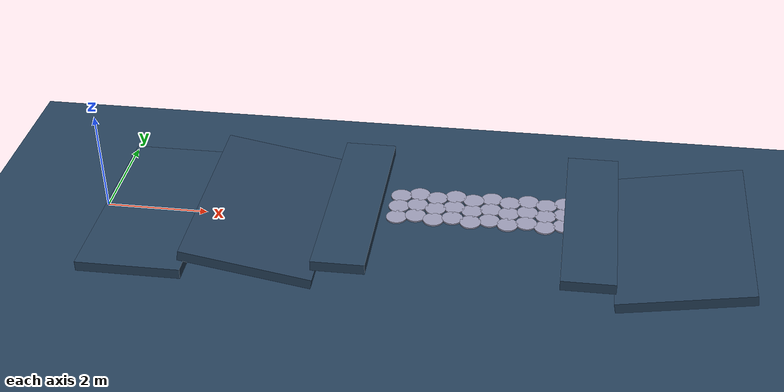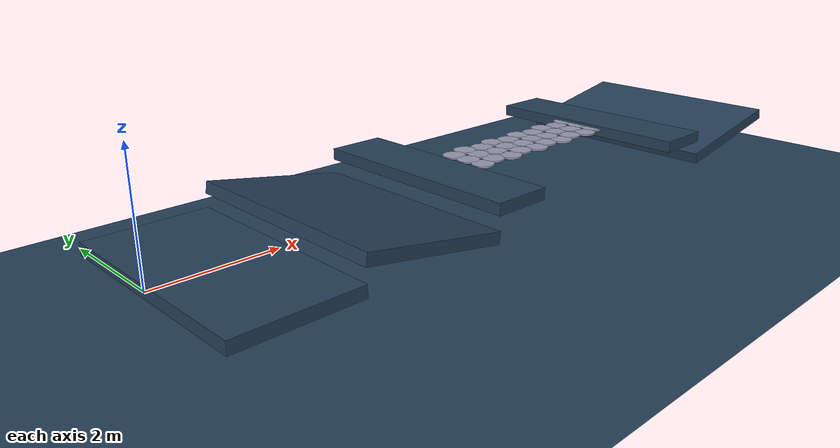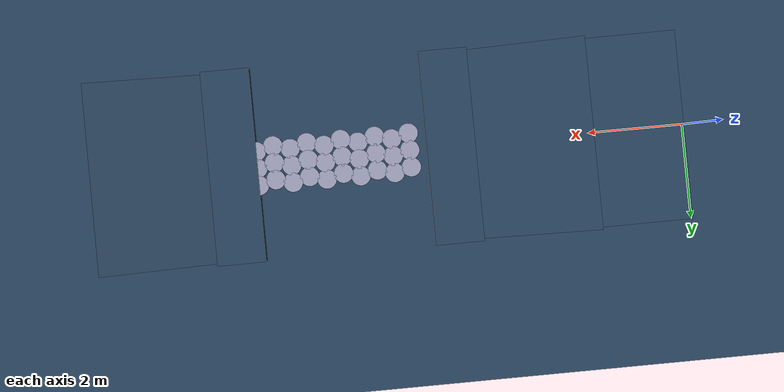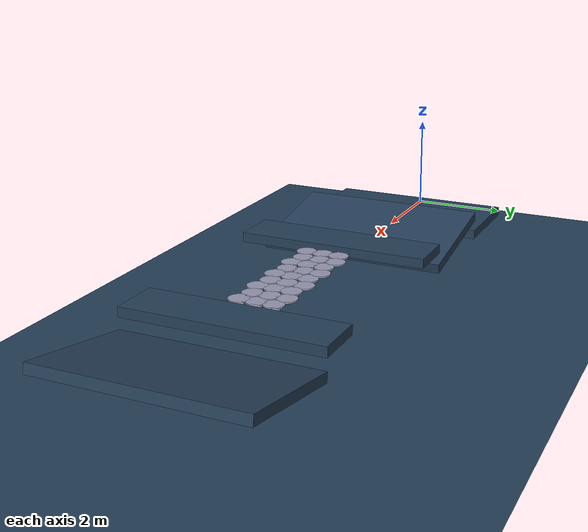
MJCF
<mujoco model="stepping_stones_terrain">
  <asset>
    <texture name="grid" type="2d" builtin="checker" width="512" height="512" rgb1=".1 .2 .3" rgb2=".2 .3 .4"/>
    <material name="grid" texture="grid" texrepeat="1 1" texuniform="true" reflectance=".2"/>
    <material name="stone" rgba=".6 .6 .7 1"/>
  </asset>

  <worldbody>
    <light pos="0 0 3" dir="0 0 -1" directional="true"/>

    <!-- Flat starting area (robot spawn point) -->
    <geom name="flat_start" type="box" pos="1.0 0 0.0" size="1.0 2.0 0.1" material="grid" friction="1.0 0.005 0.0001"/>

    <!-- Uphill slope -->
    <geom name="uphill" type="box" pos="3.23100969126526 0 0.2170602220836629" size="1.25 2.0 0.1" euler="0 10.0 0" material="grid" friction="1.0 0.005 0.0001"/>

    <!-- First flat section -->
    <geom name="flat1" type="box" pos="4.96201938253052 0 0.44081745177116244" size="0.5 2.0 0.1" material="grid" friction="1.0 0.005 0.0001"/>

    <!-- Stepping stones section -->
    <geom name="stone_0" type="cylinder" pos="5.8120193825305195 -0.35 0.4708174517711624" size="0.2 0.015" material="stone" friction="1.0 0.005 0.0001"/>
    <geom name="stone_1" type="cylinder" pos="5.8120193825305195 0.0 0.4708174517711624" size="0.2 0.015" material="stone" friction="1.0 0.005 0.0001"/>
    <geom name="stone_2" type="cylinder" pos="5.8120193825305195 0.35 0.4708174517711624" size="0.2 0.015" material="stone" friction="1.0 0.005 0.0001"/>
    <geom name="stone_3" type="cylinder" pos="6.162019382530519 -0.26249999999999996 0.4708174517711624" size="0.2 0.015" material="stone" friction="1.0 0.005 0.0001"/>
    <geom name="stone_4" type="cylinder" pos="6.162019382530519 0.0875 0.4708174517711624" size="0.2 0.015" material="stone" friction="1.0 0.005 0.0001"/>
    <geom name="stone_5" type="cylinder" pos="6.162019382530519 0.4375 0.4708174517711624" size="0.2 0.015" material="stone" friction="1.0 0.005 0.0001"/>
    <geom name="stone_6" type="cylinder" pos="6.512019382530519 -0.35 0.4708174517711624" size="0.2 0.015" material="stone" friction="1.0 0.005 0.0001"/>
    <geom name="stone_7" type="cylinder" pos="6.512019382530519 0.0 0.4708174517711624" size="0.2 0.015" material="stone" friction="1.0 0.005 0.0001"/>
    <geom name="stone_8" type="cylinder" pos="6.512019382530519 0.35 0.4708174517711624" size="0.2 0.015" material="stone" friction="1.0 0.005 0.0001"/>
    <geom name="stone_9" type="cylinder" pos="6.8620193825305185 -0.26249999999999996 0.4708174517711624" size="0.2 0.015" material="stone" friction="1.0 0.005 0.0001"/>
    <geom name="stone_10" type="cylinder" pos="6.8620193825305185 0.0875 0.4708174517711624" size="0.2 0.015" material="stone" friction="1.0 0.005 0.0001"/>
    <geom name="stone_11" type="cylinder" pos="6.8620193825305185 0.4375 0.4708174517711624" size="0.2 0.015" material="stone" friction="1.0 0.005 0.0001"/>
    <geom name="stone_12" type="cylinder" pos="7.212019382530518 -0.35 0.4708174517711624" size="0.2 0.015" material="stone" friction="1.0 0.005 0.0001"/>
    <geom name="stone_13" type="cylinder" pos="7.212019382530518 0.0 0.4708174517711624" size="0.2 0.015" material="stone" friction="1.0 0.005 0.0001"/>
    <geom name="stone_14" type="cylinder" pos="7.212019382530518 0.35 0.4708174517711624" size="0.2 0.015" material="stone" friction="1.0 0.005 0.0001"/>
    <geom name="stone_15" type="cylinder" pos="7.562019382530518 -0.26249999999999996 0.4708174517711624" size="0.2 0.015" material="stone" friction="1.0 0.005 0.0001"/>
    <geom name="stone_16" type="cylinder" pos="7.562019382530518 0.0875 0.4708174517711624" size="0.2 0.015" material="stone" friction="1.0 0.005 0.0001"/>
    <geom name="stone_17" type="cylinder" pos="7.562019382530518 0.4375 0.4708174517711624" size="0.2 0.015" material="stone" friction="1.0 0.005 0.0001"/>
    <geom name="stone_18" type="cylinder" pos="7.912019382530517 -0.35 0.4708174517711624" size="0.2 0.015" material="stone" friction="1.0 0.005 0.0001"/>
    <geom name="stone_19" type="cylinder" pos="7.912019382530517 0.0 0.4708174517711624" size="0.2 0.015" material="stone" friction="1.0 0.005 0.0001"/>
    <geom name="stone_20" type="cylinder" pos="7.912019382530517 0.35 0.4708174517711624" size="0.2 0.015" material="stone" friction="1.0 0.005 0.0001"/>
    <geom name="stone_21" type="cylinder" pos="8.262019382530518 -0.26249999999999996 0.4708174517711624" size="0.2 0.015" material="stone" friction="1.0 0.005 0.0001"/>
    <geom name="stone_22" type="cylinder" pos="8.262019382530518 0.0875 0.4708174517711624" size="0.2 0.015" material="stone" friction="1.0 0.005 0.0001"/>
    <geom name="stone_23" type="cylinder" pos="8.262019382530518 0.4375 0.4708174517711624" size="0.2 0.015" material="stone" friction="1.0 0.005 0.0001"/>
    <geom name="stone_24" type="cylinder" pos="8.612019382530518 -0.35 0.4708174517711624" size="0.2 0.015" material="stone" friction="1.0 0.005 0.0001"/>
    <geom name="stone_25" type="cylinder" pos="8.612019382530518 0.0 0.4708174517711624" size="0.2 0.015" material="stone" friction="1.0 0.005 0.0001"/>
    <geom name="stone_26" type="cylinder" pos="8.612019382530518 0.35 0.4708174517711624" size="0.2 0.015" material="stone" friction="1.0 0.005 0.0001"/>
    <geom name="stone_27" type="cylinder" pos="8.962019382530517 -0.26249999999999996 0.4708174517711624" size="0.2 0.015" material="stone" friction="1.0 0.005 0.0001"/>
    <geom name="stone_28" type="cylinder" pos="8.962019382530517 0.0875 0.4708174517711624" size="0.2 0.015" material="stone" friction="1.0 0.005 0.0001"/>
    <geom name="stone_29" type="cylinder" pos="8.962019382530517 0.4375 0.4708174517711624" size="0.2 0.015" material="stone" friction="1.0 0.005 0.0001"/>

    <!-- Second flat section -->
    <geom name="flat2" type="box" pos="9.46201938253052 0 0.44081745177116244" size="0.5 2.0 0.1" material="grid" friction="1.0 0.005 0.0001"/>

    <!-- Downhill slope -->
    <geom name="downhill" type="box" pos="11.193029073795781 0 0.22375722968749953" size="1.25 2.0 0.1" euler="0 -10.0 0" material="grid" friction="1.0 0.005 0.0001"/>

    <!-- Safety ground plane -->
    <geom name="ground" type="plane" pos="0 0 -1.0" size="50 50 0.1" material="grid" friction="1.0 0.005 0.0001"/>

  </worldbody>
</mujoco>
